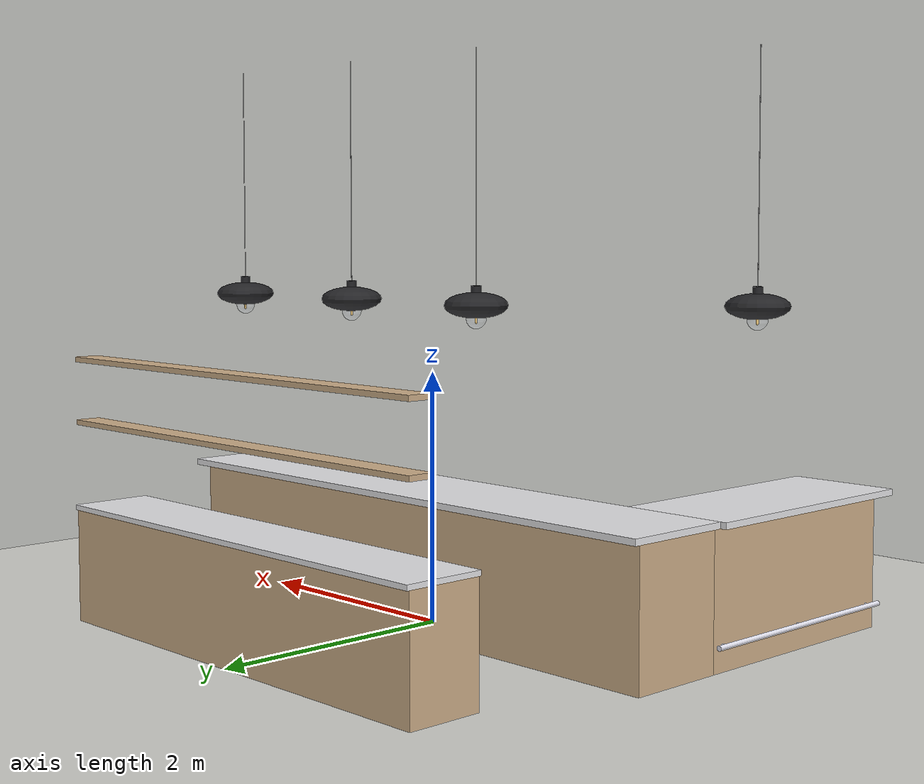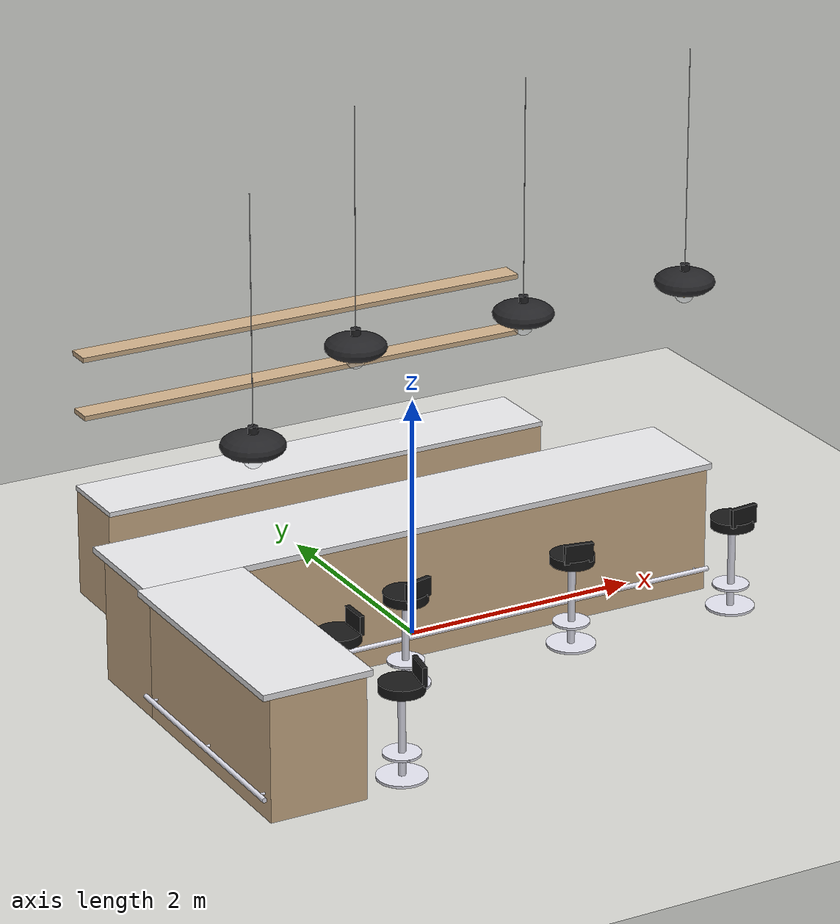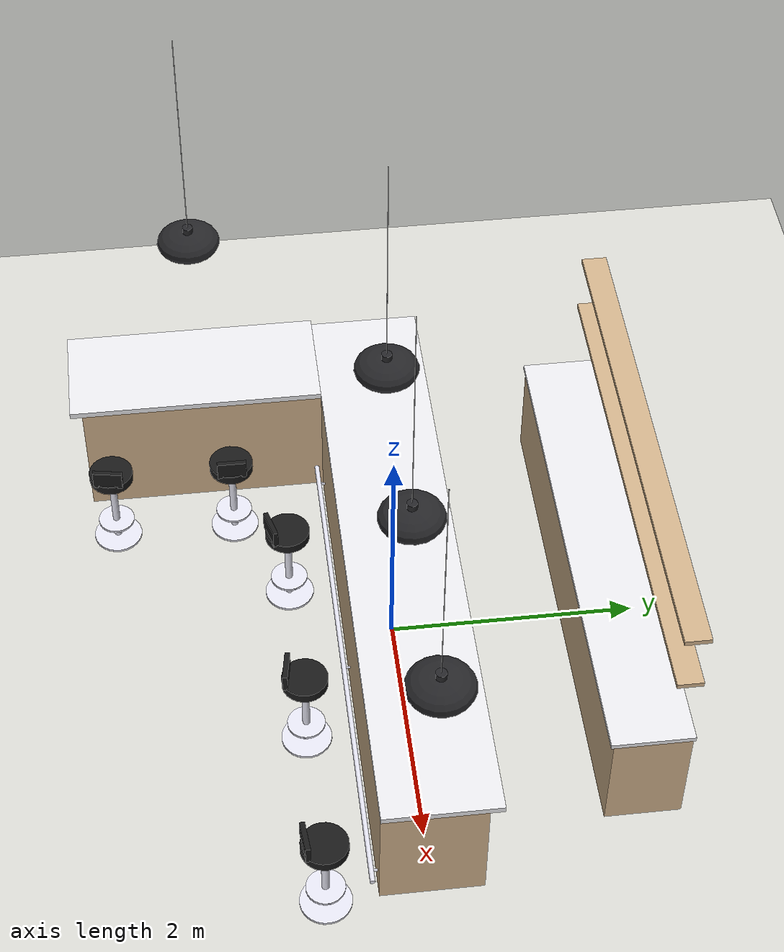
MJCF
<mujoco model="coffee_bar">
  <compiler angle="degree" coordinate="local" inertiafromgeom="true" autolimits="true"/>
  <option timestep="0.002" gravity="0 0 -9.81"/>

  <visual>
    <!-- Professional Grade Optimization -->
    <headlight ambient="0.3 0.3 0.35" diffuse="0.4 0.4 0.45" specular="0.1 0.1 0.1"/>
    <rgba haze="0.85 0.88 0.92 1"/>
    <global offwidth="3840" offheight="2160" fovy="45"/>
    <quality shadowsize="4096" offsamples="8"/>
    <map znear="0.01" zfar="100" shadowscale="0.5"/>
  </visual>

  <statistic extent="4" center="0 0 1"/>

  <asset>
    <!-- Textures -->
    <texture name="tex_floor" type="2d" builtin="flat" rgb1="0.85 0.85 0.83" width="512" height="512"/>
    <texture name="tex_metal_dark" type="2d" builtin="flat" rgb1="0.15 0.15 0.16" width="512" height="512"/>

    <!-- Materials -->
    <material name="mat_floor" texture="tex_floor" reflectance="0.15" shininess="0.4" specular="0.2"/>
    <material name="mat_frame" texture="tex_metal_dark" reflectance="0.3" shininess="0.6" specular="0.5"/>
    <material name="mat_bulb" rgba="1 1 0.95 1" emission="5.0" reflectance="0.0"/>

    <!-- Coffee Bar Materials -->
    <texture name="tex_wood_light" type="2d" builtin="flat" rgb1="0.82 0.7 0.55" width="512" height="512"/>
    <material name="mat_wood_light" texture="tex_wood_light" reflectance="0.2" shininess="0.1"/>
    <material name="mat_counter_top" rgba="0.92 0.92 0.93 1" reflectance="0.4" shininess="0.6"/>

    <!-- Realistic Stool Materials -->
    <material name="mat_chrome" rgba="0.9 0.9 0.95 1" reflectance="0.9" shininess="1.0" specular="1.0"/>
    <material name="mat_leather_black" rgba="0.1 0.1 0.1 1" reflectance="0.15" shininess="0.4" specular="0.2"/>
    <material name="mat_leather_red" rgba="0.6 0.1 0.1 1" reflectance="0.15" shininess="0.4" specular="0.2"/>

    <!-- Realistic Lamp Materials -->
    <material name="mat_lamp_glass_clear" rgba="0.9 0.95 1.0 0.2" reflectance="0.9" shininess="1.0" specular="0.9"/>
    <material name="mat_lamp_filament" rgba="1.0 0.8 0.4 1" emission="8.0" reflectance="0.0"/>
    <material name="mat_lamp_cord" rgba="0.1 0.1 0.1 1" reflectance="0.05" shininess="0.1"/>
  </asset>

  <worldbody>
    <!-- Lighting -->
    <light name="sun" pos="5 -10 15" dir="-0.3 0.6 -1" diffuse="0.9 0.88 0.82" specular="0.3 0.3 0.3" castshadow="true" cutoff="60"/>
    <light name="fill_sky" pos="-5 5 10" dir="0.5 -0.5 -1" diffuse="0.2 0.25 0.35" specular="0.0 0.0 0.0" castshadow="false"/>

    <!-- Floor -->
    <geom name="floor" type="plane" pos="0 0 0" size="0 0 0.1" material="mat_floor"/>

    <!-- COFFEE BAR COMPONENTS (Centered) -->

     <body name="coffee_bar" pos="0 0 0">
         <!-- Main Section (Extended to 5m) -->
         <geom name="bar_body" type="box" pos="0 0 0.525" size="2.5 0.4 0.525" material="mat_wood_light"/>
         <geom name="bar_top" type="box" pos="0 0.05 1.075" size="2.55 0.45 0.025" material="mat_counter_top"/>

         <!-- L-Return Section (Left Side, extending forward) -->
         <!-- Attached at X = -2.5. Extends towards -Y. -->
         <!-- Center X: -2.5 + 0.4 = -2.1. Center Y: -0.4 - 1.0 = -1.4. -->
         <geom name="bar_return_body" type="box" pos="-2.1 -1.4 0.525" size="0.4 1.0 0.525" material="mat_wood_light"/>
         <geom name="bar_return_top" type="box" pos="-2.15 -1.45 1.075" size="0.45 1.05 0.025" material="mat_counter_top"/>

         <!-- Bar Foot Rail (L-Shaped) -->
         <!-- Main Rail: Runs along Y=-0.4 face. From X=-1.7 (inside corner) to X=2.5 -->
         <geom name="bar_rail_main" type="cylinder" pos="0.4 -0.45 0.2" size="0.02 2.1" euler="0 90 0" material="mat_chrome"/>
         <!-- Return Rail: Runs along X=-2.5 face. From Y=-0.4 to Y=-2.4 -->
         <geom name="bar_rail_return" type="cylinder" pos="-2.55 -1.4 0.2" size="0.02 1.0" euler="90 0 0" material="mat_chrome"/>

         <!-- Rail Supports -->
         <geom name="rail_sup_m1" type="cylinder" pos="-1.5 -0.42 0.2" size="0.01 0.04" euler="90 0 0" material="mat_chrome"/>
         <geom name="rail_sup_m2" type="cylinder" pos="0.5 -0.42 0.2" size="0.01 0.04" euler="90 0 0" material="mat_chrome"/>
         <geom name="rail_sup_m3" type="cylinder" pos="2.4 -0.42 0.2" size="0.01 0.04" euler="90 0 0" material="mat_chrome"/>

         <geom name="rail_sup_r1" type="cylinder" pos="-2.52 -0.5 0.2" size="0.01 0.04" euler="0 90 0" material="mat_chrome"/>
         <geom name="rail_sup_r2" type="cylinder" pos="-2.52 -1.4 0.2" size="0.01 0.04" euler="0 90 0" material="mat_chrome"/>
         <geom name="rail_sup_r3" type="cylinder" pos="-2.52 -2.3 0.2" size="0.01 0.04" euler="0 90 0" material="mat_chrome"/>
     </body>

     <body name="back_bar" pos="0 1.7 0">
         <geom name="cabinet_body" type="box" pos="0 0 0.45" size="2.0 0.3 0.45" material="mat_wood_light"/>
         <geom name="cabinet_top" type="box" pos="0 0 0.92" size="2.0 0.32 0.02" material="mat_counter_top"/>
         <geom name="shelf_1" type="box" pos="0 0.2 1.6" size="2.0 0.1 0.02" material="mat_wood_light"/>
         <geom name="shelf_2" type="box" pos="0 0.2 2.1" size="2.0 0.1 0.02" material="mat_wood_light"/>
    </body>

     <body name="stools" pos="0 -0.8 0">
          <!-- Main Section Stools (Shifted Right) -->
          <!-- Realistic Rotating Stool 1 -->
          <body name="stool1" pos="-0.5 0 0" euler="0 0 15">
             <!-- Chrome Base -->
             <geom name="s1_base_disk" type="cylinder" pos="0 0 0.01" size="0.2 0.01" material="mat_chrome"/>
             <geom name="s1_column_main" type="cylinder" pos="0 0 0.35" size="0.03 0.35" material="mat_chrome"/>

             <!-- Footrest Ring -->
             <geom name="s1_footrest_ring" type="cylinder" pos="0 0 0.2" size="0.15 0.01" material="mat_chrome" group="1"/> <!-- Visual simplification -->
             <!-- Detailed Footrest Spokes (Optional, simplified as cross bar for performance/simplicity) -->
             <geom name="s1_footrest_cross" type="box" pos="0 0 0.2" size="0.15 0.01 0.005" material="mat_chrome"/>

             <!-- Seat Support Mechanism -->
             <geom name="s1_seat_support" type="cylinder" pos="0 0 0.71" size="0.08 0.02" material="mat_chrome"/>

             <!-- Curved Seat (Using composite shapes for ergonomic look) -->
             <!-- Base Seat Cushion -->
             <geom name="s1_seat_base" type="cylinder" pos="0 0 0.75" size="0.18 0.04" material="mat_leather_black"/>
             <!-- Low Backrest (Curved box approximation) - Flipped to -0.14 to face bar -->
             <geom name="s1_backrest" type="box" pos="0 -0.14 0.85" size="0.12 0.02 0.08" material="mat_leather_black"/>
          </body>

          <!-- Realistic Rotating Stool 2 -->
          <body name="stool2" pos="1.0 0 0" euler="0 0 -10">
             <geom name="s2_base_disk" type="cylinder" pos="0 0 0.01" size="0.2 0.01" material="mat_chrome"/>
             <geom name="s2_column_main" type="cylinder" pos="0 0 0.35" size="0.03 0.35" material="mat_chrome"/>
             <geom name="s2_footrest_ring" type="cylinder" pos="0 0 0.2" size="0.15 0.01" material="mat_chrome" group="1"/>
             <geom name="s2_footrest_cross" type="box" pos="0 0 0.2" size="0.15 0.01 0.005" material="mat_chrome"/>
             <geom name="s2_seat_support" type="cylinder" pos="0 0 0.71" size="0.08 0.02" material="mat_chrome"/>
             <geom name="s2_seat_base" type="cylinder" pos="0 0 0.75" size="0.18 0.04" material="mat_leather_black"/>
             <geom name="s2_backrest" type="box" pos="0 -0.14 0.85" size="0.12 0.02 0.08" material="mat_leather_black"/>
          </body>

          <!-- Realistic Rotating Stool 3 -->
          <body name="stool3" pos="2.5 0 0" euler="0 0 5">
             <geom name="s3_base_disk" type="cylinder" pos="0 0 0.01" size="0.2 0.01" material="mat_chrome"/>
             <geom name="s3_column_main" type="cylinder" pos="0 0 0.35" size="0.03 0.35" material="mat_chrome"/>
             <geom name="s3_footrest_ring" type="cylinder" pos="0 0 0.2" size="0.15 0.01" material="mat_chrome" group="1"/>
             <geom name="s3_footrest_cross" type="box" pos="0 0 0.2" size="0.15 0.01 0.005" material="mat_chrome"/>
             <geom name="s3_seat_support" type="cylinder" pos="0 0 0.71" size="0.08 0.02" material="mat_chrome"/>
             <geom name="s3_seat_base" type="cylinder" pos="0 0 0.75" size="0.18 0.04" material="mat_leather_black"/>
             <geom name="s3_backrest" type="box" pos="0 -0.14 0.85" size="0.12 0.02 0.08" material="mat_leather_black"/>
          </body>

          <!-- Return Section Stools (Facing Right/East) -->
          <!-- Pos X = -3.0 (Left of return bar at -2.5) -->
          <!-- Pos Y = -1.0 and -2.0 -->
          <!-- Rotate 90 degrees to face the return bar (East) -->

          <body name="stool4" pos="-1.3 -0.4 0" euler="0 0 90">
              <geom name="s4_base_disk" type="cylinder" pos="0 0 0.01" size="0.2 0.01" material="mat_chrome"/>
              <geom name="s4_column_main" type="cylinder" pos="0 0 0.35" size="0.03 0.35" material="mat_chrome"/>
              <geom name="s4_footrest_ring" type="cylinder" pos="0 0 0.2" size="0.15 0.01" material="mat_chrome" group="1"/>
              <geom name="s4_footrest_cross" type="box" pos="0 0 0.2" size="0.15 0.01 0.005" material="mat_chrome"/>
              <geom name="s4_seat_support" type="cylinder" pos="0 0 0.71" size="0.08 0.02" material="mat_chrome"/>
              <geom name="s4_seat_base" type="cylinder" pos="0 0 0.75" size="0.18 0.04" material="mat_leather_black"/>
              <geom name="s4_backrest" type="box" pos="0 -0.14 0.85" size="0.12 0.02 0.08" material="mat_leather_black"/>
           </body>

           <body name="stool5" pos="-1.3 -1.4 0" euler="0 0 80">
              <geom name="s5_base_disk" type="cylinder" pos="0 0 0.01" size="0.2 0.01" material="mat_chrome"/>
              <geom name="s5_column_main" type="cylinder" pos="0 0 0.35" size="0.03 0.35" material="mat_chrome"/>
             <geom name="s5_footrest_ring" type="cylinder" pos="0 0 0.2" size="0.15 0.01" material="mat_chrome" group="1"/>
             <geom name="s5_footrest_cross" type="box" pos="0 0 0.2" size="0.15 0.01 0.005" material="mat_chrome"/>
             <geom name="s5_seat_support" type="cylinder" pos="0 0 0.71" size="0.08 0.02" material="mat_chrome"/>
             <geom name="s5_seat_base" type="cylinder" pos="0 0 0.75" size="0.18 0.04" material="mat_leather_black"/>
             <geom name="s5_backrest" type="box" pos="0 -0.14 0.85" size="0.12 0.02 0.08" material="mat_leather_black"/>
          </body>
     </body>

     <body name="bar_light_1" pos="-0.5 0.0 2.5">
        <geom name="b_cord1" type="cylinder" pos="0 0 1.0" size="0.003 1.0" material="mat_lamp_cord"/>
        <geom name="b_shade_neck1" type="cylinder" pos="0 0 0.15" size="0.04 0.05" material="mat_frame"/>
        <geom name="b_shade_body1" type="ellipsoid" pos="0 0 0.05" size="0.25 0.25 0.1" material="mat_frame"/>
        <geom name="b_bulb_glass1" type="sphere" pos="0 0 -0.05" size="0.08" material="mat_lamp_glass_clear"/>
        <geom name="b_filament1" type="capsule" pos="0 0 -0.05" size="0.01 0.03" material="mat_lamp_filament"/>
        <light name="b_light1" pos="0 0 -0.05" dir="0 0 -1" diffuse="1.0 0.9 0.7" attenuation="0.8 0 0.1" castshadow="true"/>
    </body>
    <body name="bar_light_2" pos="1.0 0.0 2.5">
        <geom name="b_cord2" type="cylinder" pos="0 0 1.0" size="0.003 1.0" material="mat_lamp_cord"/>
        <geom name="b_shade_neck2" type="cylinder" pos="0 0 0.15" size="0.04 0.05" material="mat_frame"/>
        <geom name="b_shade_body2" type="ellipsoid" pos="0 0 0.05" size="0.25 0.25 0.1" material="mat_frame"/>
        <geom name="b_bulb_glass2" type="sphere" pos="0 0 -0.05" size="0.08" material="mat_lamp_glass_clear"/>
        <geom name="b_filament2" type="capsule" pos="0 0 -0.05" size="0.01 0.03" material="mat_lamp_filament"/>
        <light name="b_light2" pos="0 0 -0.05" dir="0 0 -1" diffuse="1.0 0.9 0.7" attenuation="0.8 0 0.1" castshadow="true"/>
    </body>
    <body name="bar_light_3" pos="2.5 0.0 2.5">
        <geom name="b_cord3" type="cylinder" pos="0 0 1.0" size="0.003 1.0" material="mat_lamp_cord"/>
        <geom name="b_shade_neck3" type="cylinder" pos="0 0 0.15" size="0.04 0.05" material="mat_frame"/>
        <geom name="b_shade_body3" type="ellipsoid" pos="0 0 0.05" size="0.25 0.25 0.1" material="mat_frame"/>
        <geom name="b_bulb_glass3" type="sphere" pos="0 0 -0.05" size="0.08" material="mat_lamp_glass_clear"/>
        <geom name="b_filament3" type="capsule" pos="0 0 -0.05" size="0.01 0.03" material="mat_lamp_filament"/>
        <light name="b_light3" pos="0 0 -0.05" dir="0 0 -1" diffuse="1.0 0.9 0.7" attenuation="0.8 0 0.1" castshadow="true"/>
    </body>
    <!-- New Light for Return Section -->
    <body name="bar_light_4" pos="-2.1 -1.4 2.5">
        <geom name="b_cord4" type="cylinder" pos="0 0 1.0" size="0.003 1.0" material="mat_lamp_cord"/>
        <geom name="b_shade_neck4" type="cylinder" pos="0 0 0.15" size="0.04 0.05" material="mat_frame"/>
        <geom name="b_shade_body4" type="ellipsoid" pos="0 0 0.05" size="0.25 0.25 0.1" material="mat_frame"/>
        <geom name="b_bulb_glass4" type="sphere" pos="0 0 -0.05" size="0.08" material="mat_lamp_glass_clear"/>
        <geom name="b_filament4" type="capsule" pos="0 0 -0.05" size="0.01 0.03" material="mat_lamp_filament"/>
        <light name="b_light4" pos="0 0 -0.05" dir="0 0 -1" diffuse="1.0 0.9 0.7" attenuation="0.8 0 0.1" castshadow="true"/>
    </body>

  </worldbody>
</mujoco>
